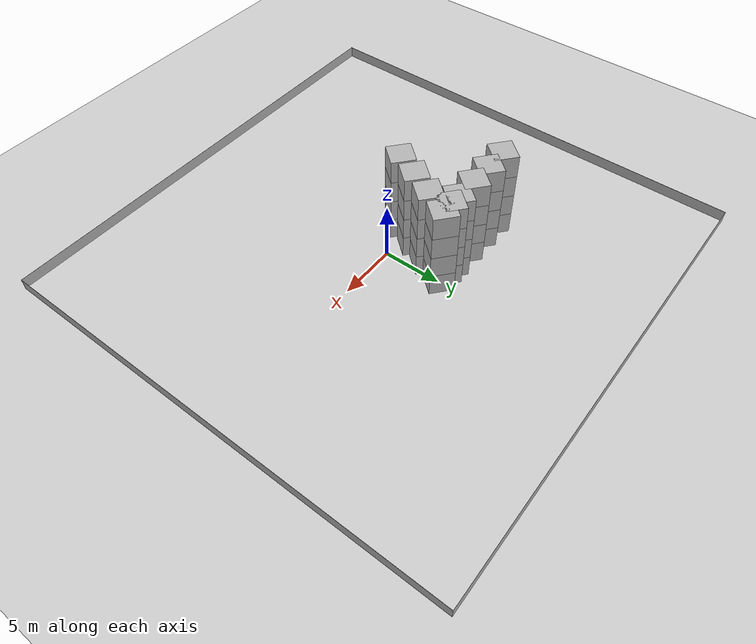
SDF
<sdf version="1.9">
 <world name="swarm_deadlock_glas">
  <model name="ground_plane">
   <static>true</static>
   <link name="link">
    <collision name="collision">
     <geometry><plane><normal>0 0 1</normal><size>1 1</size></plane></geometry>
    </collision>
    <visual name="visual">
     <geometry><plane><normal>0 0 1</normal><size>100 100</size></plane></geometry>
     <material>
      <ambient>0.8 0.8 0.8 1</ambient>
      <diffuse>0.8 0.8 0.8 1</diffuse>
      <specular>0.8 0.8 0.8 1</specular>
     </material>
    </visual>
    <inertial>
     <mass>1</mass>
     <inertia><ixx>1</ixx><ixy>0</ixy><ixz>0</ixz><iyy>1</iyy><iyz>0</iyz><izz>1</izz></inertia>
    </inertial>
   </link>
  </model>
  <model name="wall_1">
   <pose>-20 0 .5 0 0 -1.57</pose>
   <static>true</static>
   <link name="link">
    <collision name="collision"><geometry><box><size>40 .01 1</size></box></geometry></collision>
    <visual name="visual">
     <geometry><box><size>40 .01 1</size></box></geometry>
     <material>
      <ambient>0.7 0.7 0.7 1</ambient>
      <diffuse>0.7 0.7 0.7 1</diffuse>
      <specular>0.7 0.7 0.7 1</specular>
     </material>
    </visual>
    <inertial>
     <mass>1</mass>
     <inertia><ixx>1</ixx><ixy>0</ixy><ixz>0</ixz><iyy>1</iyy><iyz>0</iyz><izz>1</izz></inertia>
    </inertial>
   </link>
  </model>
  <model name="wall_2">
   <pose>20 0 .5 0 0 -1.57</pose>
   <static>true</static>
   <link name="link">
    <collision name="collision"><geometry><box><size>40 .01 1</size></box></geometry></collision>
    <visual name="visual">
     <geometry><box><size>40 .01 1</size></box></geometry>
     <material>
      <ambient>0.7 0.7 0.7 1</ambient>
      <diffuse>0.7 0.7 0.7 1</diffuse>
      <specular>0.7 0.7 0.7 1</specular>
     </material>
    </visual>
    <inertial>
     <mass>1</mass>
     <inertia><ixx>1</ixx><ixy>0</ixy><ixz>0</ixz><iyy>1</iyy><iyz>0</iyz><izz>1</izz></inertia>
    </inertial>
   </link>
  </model>
  <model name="wall_3">
   <pose>0 20 .5 0 0 0</pose>
   <static>true</static>
   <link name="link">
    <collision name="collision"><geometry><box><size>40 .01 1</size></box></geometry></collision>
    <visual name="visual">
     <geometry><box><size>40 .01 1</size></box></geometry>
     <material>
      <ambient>0.7 0.7 0.7 1</ambient>
      <diffuse>0.7 0.7 0.7 1</diffuse>
      <specular>0.7 0.7 0.7 1</specular>
     </material>
    </visual>
    <inertial>
     <mass>1</mass>
     <inertia><ixx>1</ixx><ixy>0</ixy><ixz>0</ixz><iyy>1</iyy><iyz>0</iyz><izz>1</izz></inertia>
    </inertial>
   </link>
  </model>
  <model name="wall_4">
   <pose>0 -20 .5 0 0 0</pose>
   <static>true</static>
   <link name="link">
    <collision name="collision"><geometry><box><size>40 .01 1</size></box></geometry></collision>
    <visual name="visual">
     <geometry><box><size>40 .01 1</size></box></geometry>
     <material>
      <ambient>0.7 0.7 0.7 1</ambient>
      <diffuse>0.7 0.7 0.7 1</diffuse>
      <specular>0.7 0.7 0.7 1</specular>
     </material>
    </visual>
    <inertial>
     <mass>1</mass>
     <inertia><ixx>1</ixx><ixy>0</ixy><ixz>0</ixz><iyy>1</iyy><iyz>0</iyz><izz>1</izz></inertia>
    </inertial>
   </link>
  </model>
  <model name="obstacle_left_1">
   <static>true</static>
   <pose>-3 -1 1 0 0 -0.7</pose>
   <link name="link">
    <collision name="collision"><geometry><box><size>2 2 2</size></box></geometry></collision>
    <visual name="visual">
     <geometry><box><size>2 2 2</size></box></geometry>
     <material>
      <ambient>0.7 0.7 0.7 1</ambient>
      <diffuse>0.7 0.7 0.7 1</diffuse>
      <specular>0.7 0.7 0.7 1</specular>
     </material>
    </visual>
   </link>
  </model>
  <model name="obstacle_left_11">
   <static>true</static>
   <pose>-3 -1 3 0 0 -0.7</pose>
   <link name="link">
    <collision name="collision"><geometry><box><size>2 2 2</size></box></geometry></collision>
    <visual name="visual">
     <geometry><box><size>2 2 2</size></box></geometry>
     <material>
      <ambient>0.7 0.7 0.7 1</ambient>
      <diffuse>0.7 0.7 0.7 1</diffuse>
      <specular>0.7 0.7 0.7 1</specular>
     </material>
    </visual>
   </link>
  </model>
  <model name="obstacle_left_12">
   <static>true</static>
   <pose>-3 -1 5 0 0 -0.7</pose>
   <link name="link">
    <collision name="collision"><geometry><box><size>2 2 2</size></box></geometry></collision>
    <visual name="visual">
     <geometry><box><size>2 2 2</size></box></geometry>
     <material>
      <ambient>0.7 0.7 0.7 1</ambient>
      <diffuse>0.7 0.7 0.7 1</diffuse>
      <specular>0.7 0.7 0.7 1</specular>
     </material>
    </visual>
   </link>
  </model>
  <model name="obstacle_left_13">
   <static>true</static>
   <pose>-3 -1 7 0 0 -0.7</pose>
   <link name="link">
    <collision name="collision"><geometry><box><size>2 2 2</size></box></geometry></collision>
    <visual name="visual">
     <geometry><box><size>2 2 2</size></box></geometry>
     <material>
      <ambient>0.7 0.7 0.7 1</ambient>
      <diffuse>0.7 0.7 0.7 1</diffuse>
      <specular>0.7 0.7 0.7 1</specular>
     </material>
    </visual>
   </link>
  </model>
  <model name="obstacle_left_2">
   <static>true</static>
   <pose>-2 1 1 0 0 -0.7</pose>
   <link name="link">
    <collision name="collision"><geometry><box><size>2 2 2</size></box></geometry></collision>
    <visual name="visual">
     <geometry><box><size>2 2 2</size></box></geometry>
     <material>
      <ambient>0.7 0.7 0.7 1</ambient>
      <diffuse>0.7 0.7 0.7 1</diffuse>
      <specular>0.7 0.7 0.7 1</specular>
     </material>
    </visual>
   </link>
  </model>
  <model name="obstacle_left_21">
   <static>true</static>
   <pose>-2 1 3 0 0 -0.7</pose>
   <link name="link">
    <collision name="collision"><geometry><box><size>2 2 2</size></box></geometry></collision>
    <visual name="visual">
     <geometry><box><size>2 2 2</size></box></geometry>
     <material>
      <ambient>0.7 0.7 0.7 1</ambient>
      <diffuse>0.7 0.7 0.7 1</diffuse>
      <specular>0.7 0.7 0.7 1</specular>
     </material>
    </visual>
   </link>
  </model>
  <model name="obstacle_left_22">
   <static>true</static>
   <pose>-2 1 5 0 0 -0.7</pose>
   <link name="link">
    <collision name="collision"><geometry><box><size>2 2 2</size></box></geometry></collision>
    <visual name="visual">
     <geometry><box><size>2 2 2</size></box></geometry>
     <material>
      <ambient>0.7 0.7 0.7 1</ambient>
      <diffuse>0.7 0.7 0.7 1</diffuse>
      <specular>0.7 0.7 0.7 1</specular>
     </material>
    </visual>
   </link>
  </model>
  <model name="obstacle_left_23">
   <static>true</static>
   <pose>-2 1 7 0 0 -0.7</pose>
   <link name="link">
    <collision name="collision"><geometry><box><size>2 2 2</size></box></geometry></collision>
    <visual name="visual">
     <geometry><box><size>2 2 2</size></box></geometry>
     <material>
      <ambient>0.7 0.7 0.7 1</ambient>
      <diffuse>0.7 0.7 0.7 1</diffuse>
      <specular>0.7 0.7 0.7 1</specular>
     </material>
    </visual>
   </link>
  </model>
  <model name="obstacle_left_3">
   <static>true</static>
   <pose>-1 3 1 0 0 -0.7</pose>
   <link name="link">
    <collision name="collision"><geometry><box><size>2 2 2</size></box></geometry></collision>
    <visual name="visual">
     <geometry><box><size>2 2 2</size></box></geometry>
     <material>
      <ambient>0.7 0.7 0.7 1</ambient>
      <diffuse>0.7 0.7 0.7 1</diffuse>
      <specular>0.7 0.7 0.7 1</specular>
     </material>
    </visual>
   </link>
  </model>
  <model name="obstacle_left_31">
   <static>true</static>
   <pose>-1 3 3 0 0 -0.7</pose>
   <link name="link">
    <collision name="collision"><geometry><box><size>2 2 2</size></box></geometry></collision>
    <visual name="visual">
     <geometry><box><size>2 2 2</size></box></geometry>
     <material>
      <ambient>0.7 0.7 0.7 1</ambient>
      <diffuse>0.7 0.7 0.7 1</diffuse>
      <specular>0.7 0.7 0.7 1</specular>
     </material>
    </visual>
   </link>
  </model>
  <model name="obstacle_left_32">
   <static>true</static>
   <pose>-1 3 5 0 0 -0.7</pose>
   <link name="link">
    <collision name="collision"><geometry><box><size>2 2 2</size></box></geometry></collision>
    <visual name="visual">
     <geometry><box><size>2 2 2</size></box></geometry>
     <material>
      <ambient>0.7 0.7 0.7 1</ambient>
      <diffuse>0.7 0.7 0.7 1</diffuse>
      <specular>0.7 0.7 0.7 1</specular>
     </material>
    </visual>
   </link>
  </model>
  <model name="obstacle_left_33">
   <static>true</static>
   <pose>-1 3 7 0 0 -0.7</pose>
   <link name="link">
    <collision name="collision"><geometry><box><size>2 2 2</size></box></geometry></collision>
    <visual name="visual">
     <geometry><box><size>2 2 2</size></box></geometry>
     <material>
      <ambient>0.7 0.7 0.7 1</ambient>
      <diffuse>0.7 0.7 0.7 1</diffuse>
      <specular>0.7 0.7 0.7 1</specular>
     </material>
    </visual>
   </link>
  </model>
  <model name="obstacle_left_4">
   <static>true</static>
   <pose>0 5 1 0 0 -0.7</pose>
   <link name="link">
    <collision name="collision"><geometry><box><size>2 2 2</size></box></geometry></collision>
    <visual name="visual">
     <geometry><box><size>2 2 2</size></box></geometry>
     <material>
      <ambient>0.7 0.7 0.7 1</ambient>
      <diffuse>0.7 0.7 0.7 1</diffuse>
      <specular>0.7 0.7 0.7 1</specular>
     </material>
    </visual>
   </link>
  </model>
  <model name="obstacle_left_41">
   <static>true</static>
   <pose>0 5 3 0 0 -0.7</pose>
   <link name="link">
    <collision name="collision"><geometry><box><size>2 2 2</size></box></geometry></collision>
    <visual name="visual">
     <geometry><box><size>2 2 2</size></box></geometry>
     <material>
      <ambient>0.7 0.7 0.7 1</ambient>
      <diffuse>0.7 0.7 0.7 1</diffuse>
      <specular>0.7 0.7 0.7 1</specular>
     </material>
    </visual>
   </link>
  </model>
  <model name="obstacle_left_42">
   <static>true</static>
   <pose>0 5 5 0 0 -0.7</pose>
   <link name="link">
    <collision name="collision"><geometry><box><size>2 2 2</size></box></geometry></collision>
    <visual name="visual">
     <geometry><box><size>2 2 2</size></box></geometry>
     <material>
      <ambient>0.7 0.7 0.7 1</ambient>
      <diffuse>0.7 0.7 0.7 1</diffuse>
      <specular>0.7 0.7 0.7 1</specular>
     </material>
    </visual>
   </link>
  </model>
  <model name="obstacle_left_43">
   <static>true</static>
   <pose>0 5 7 0 0 -0.7</pose>
   <link name="link">
    <collision name="collision"><geometry><box><size>2 2 2</size></box></geometry></collision>
    <visual name="visual">
     <geometry><box><size>2 2 2</size></box></geometry>
     <material>
      <ambient>0.7 0.7 0.7 1</ambient>
      <diffuse>0.7 0.7 0.7 1</diffuse>
      <specular>0.7 0.7 0.7 1</specular>
     </material>
    </visual>
   </link>
  </model>
  <model name="obstacle_left_50">
   <static>true</static>
   <pose>-1 5 1 0 0 -0.7</pose>
   <link name="link">
    <collision name="collision"><geometry><box><size>2 2 2</size></box></geometry></collision>
    <visual name="visual">
     <geometry><box><size>2 2 2</size></box></geometry>
     <material>
      <ambient>0.7 0.7 0.7 1</ambient>
      <diffuse>0.7 0.7 0.7 1</diffuse>
      <specular>0.7 0.7 0.7 1</specular>
     </material>
    </visual>
   </link>
  </model>
  <model name="obstacle_left_51">
   <static>true</static>
   <pose>-1 5 3 0 0 -0.7</pose>
   <link name="link">
    <collision name="collision"><geometry><box><size>2 2 2</size></box></geometry></collision>
    <visual name="visual">
     <geometry><box><size>2 2 2</size></box></geometry>
     <material>
      <ambient>0.7 0.7 0.7 1</ambient>
      <diffuse>0.7 0.7 0.7 1</diffuse>
      <specular>0.7 0.7 0.7 1</specular>
     </material>
    </visual>
   </link>
  </model>
  <model name="obstacle_left_52">
   <static>true</static>
   <pose>-1 5 5 0 0 -0.7</pose>
   <link name="link">
    <collision name="collision"><geometry><box><size>2 2 2</size></box></geometry></collision>
    <visual name="visual">
     <geometry><box><size>2 2 2</size></box></geometry>
     <material>
      <ambient>0.7 0.7 0.7 1</ambient>
      <diffuse>0.7 0.7 0.7 1</diffuse>
      <specular>0.7 0.7 0.7 1</specular>
     </material>
    </visual>
   </link>
  </model>
  <model name="obstacle_left_53">
   <static>true</static>
   <pose>-1 5 7 0 0 -0.7</pose>
   <link name="link">
    <collision name="collision"><geometry><box><size>2 2 2</size></box></geometry></collision>
    <visual name="visual">
     <geometry><box><size>2 2 2</size></box></geometry>
     <material>
      <ambient>0.7 0.7 0.7 1</ambient>
      <diffuse>0.7 0.7 0.7 1</diffuse>
      <specular>0.7 0.7 0.7 1</specular>
     </material>
    </visual>
   </link>
  </model>
  <model name="obstacle_left_60">
   <static>true</static>
   <pose>-2 5 1 0 0 -0.7</pose>
   <link name="link">
    <collision name="collision"><geometry><box><size>2 2 2</size></box></geometry></collision>
    <visual name="visual">
     <geometry><box><size>2 2 2</size></box></geometry>
     <material>
      <ambient>0.7 0.7 0.7 1</ambient>
      <diffuse>0.7 0.7 0.7 1</diffuse>
      <specular>0.7 0.7 0.7 1</specular>
     </material>
    </visual>
   </link>
  </model>
  <model name="obstacle_left_61">
   <static>true</static>
   <pose>-2 5 3 0 0 -0.7</pose>
   <link name="link">
    <collision name="collision"><geometry><box><size>2 2 2</size></box></geometry></collision>
    <visual name="visual">
     <geometry><box><size>2 2 2</size></box></geometry>
     <material>
      <ambient>0.7 0.7 0.7 1</ambient>
      <diffuse>0.7 0.7 0.7 1</diffuse>
      <specular>0.7 0.7 0.7 1</specular>
     </material>
    </visual>
   </link>
  </model>
  <model name="obstacle_left_62">
   <static>true</static>
   <pose>-2 5 5 0 0 -0.7</pose>
   <link name="link">
    <collision name="collision"><geometry><box><size>2 2 2</size></box></geometry></collision>
    <visual name="visual">
     <geometry><box><size>2 2 2</size></box></geometry>
     <material>
      <ambient>0.7 0.7 0.7 1</ambient>
      <diffuse>0.7 0.7 0.7 1</diffuse>
      <specular>0.7 0.7 0.7 1</specular>
     </material>
    </visual>
   </link>
  </model>
  <model name="obstacle_left_63">
   <static>true</static>
   <pose>-2 5 7 0 0 -0.7</pose>
   <link name="link">
    <collision name="collision"><geometry><box><size>2 2 2</size></box></geometry></collision>
    <visual name="visual">
     <geometry><box><size>2 2 2</size></box></geometry>
     <material>
      <ambient>0.7 0.7 0.7 1</ambient>
      <diffuse>0.7 0.7 0.7 1</diffuse>
      <specular>0.7 0.7 0.7 1</specular>
     </material>
    </visual>
   </link>
  </model>
  <model name="obstacle_left_70">
   <static>true</static>
   <pose>-4 5 1 0 0 -0.7</pose>
   <link name="link">
    <collision name="collision"><geometry><box><size>2 2 2</size></box></geometry></collision>
    <visual name="visual">
     <geometry><box><size>2 2 2</size></box></geometry>
     <material>
      <ambient>0.7 0.7 0.7 1</ambient>
      <diffuse>0.7 0.7 0.7 1</diffuse>
      <specular>0.7 0.7 0.7 1</specular>
     </material>
    </visual>
   </link>
  </model>
  <model name="obstacle_left_71">
   <static>true</static>
   <pose>-4 5 3 0 0 -0.7</pose>
   <link name="link">
    <collision name="collision"><geometry><box><size>2 2 2</size></box></geometry></collision>
    <visual name="visual">
     <geometry><box><size>2 2 2</size></box></geometry>
     <material>
      <ambient>0.7 0.7 0.7 1</ambient>
      <diffuse>0.7 0.7 0.7 1</diffuse>
      <specular>0.7 0.7 0.7 1</specular>
     </material>
    </visual>
   </link>
  </model>
  <model name="obstacle_left_72">
   <static>true</static>
   <pose>-4 5 5 0 0 -0.7</pose>
   <link name="link">
    <collision name="collision"><geometry><box><size>2 2 2</size></box></geometry></collision>
    <visual name="visual">
     <geometry><box><size>2 2 2</size></box></geometry>
     <material>
      <ambient>0.7 0.7 0.7 1</ambient>
      <diffuse>0.7 0.7 0.7 1</diffuse>
      <specular>0.7 0.7 0.7 1</specular>
     </material>
    </visual>
   </link>
  </model>
  <model name="obstacle_left_73">
   <static>true</static>
   <pose>-4 5 7 0 0 -0.7</pose>
   <link name="link">
    <collision name="collision"><geometry><box><size>2 2 2</size></box></geometry></collision>
    <visual name="visual">
     <geometry><box><size>2 2 2</size></box></geometry>
     <material>
      <ambient>0.7 0.7 0.7 1</ambient>
      <diffuse>0.7 0.7 0.7 1</diffuse>
      <specular>0.7 0.7 0.7 1</specular>
     </material>
    </visual>
   </link>
  </model>
  <model name="obstacle_left_80">
   <static>true</static>
   <pose>-6 5 1 0 0 -0.7</pose>
   <link name="link">
    <collision name="collision"><geometry><box><size>2 2 2</size></box></geometry></collision>
    <visual name="visual">
     <geometry><box><size>2 2 2</size></box></geometry>
     <material>
      <ambient>0.7 0.7 0.7 1</ambient>
      <diffuse>0.7 0.7 0.7 1</diffuse>
      <specular>0.7 0.7 0.7 1</specular>
     </material>
    </visual>
   </link>
  </model>
  <model name="obstacle_left_81">
   <static>true</static>
   <pose>-6 5 3 0 0 -0.7</pose>
   <link name="link">
    <collision name="collision"><geometry><box><size>2 2 2</size></box></geometry></collision>
    <visual name="visual">
     <geometry><box><size>2 2 2</size></box></geometry>
     <material>
      <ambient>0.7 0.7 0.7 1</ambient>
      <diffuse>0.7 0.7 0.7 1</diffuse>
      <specular>0.7 0.7 0.7 1</specular>
     </material>
    </visual>
   </link>
  </model>
  <model name="obstacle_left_82">
   <static>true</static>
   <pose>-6 5 5 0 0 -0.7</pose>
   <link name="link">
    <collision name="collision"><geometry><box><size>2 2 2</size></box></geometry></collision>
    <visual name="visual">
     <geometry><box><size>2 2 2</size></box></geometry>
     <material>
      <ambient>0.7 0.7 0.7 1</ambient>
      <diffuse>0.7 0.7 0.7 1</diffuse>
      <specular>0.7 0.7 0.7 1</specular>
     </material>
    </visual>
   </link>
  </model>
  <model name="obstacle_left_83">
   <static>true</static>
   <pose>-6 5 7 0 0 -0.7</pose>
   <link name="link">
    <collision name="collision"><geometry><box><size>2 2 2</size></box></geometry></collision>
    <visual name="visual">
     <geometry><box><size>2 2 2</size></box></geometry>
     <material>
      <ambient>0.7 0.7 0.7 1</ambient>
      <diffuse>0.7 0.7 0.7 1</diffuse>
      <specular>0.7 0.7 0.7 1</specular>
     </material>
    </visual>
   </link>
  </model>
  <model name="obstacle_left_90">
   <static>true</static>
   <pose>-8 5 1 0 0 -0.7</pose>
   <link name="link">
    <collision name="collision"><geometry><box><size>2 2 2</size></box></geometry></collision>
    <visual name="visual">
     <geometry><box><size>2 2 2</size></box></geometry>
     <material>
      <ambient>0.7 0.7 0.7 1</ambient>
      <diffuse>0.7 0.7 0.7 1</diffuse>
      <specular>0.7 0.7 0.7 1</specular>
     </material>
    </visual>
   </link>
  </model>
  <model name="obstacle_left_91">
   <static>true</static>
   <pose>-8 5 3 0 0 -0.7</pose>
   <link name="link">
    <collision name="collision"><geometry><box><size>2 2 2</size></box></geometry></collision>
    <visual name="visual">
     <geometry><box><size>2 2 2</size></box></geometry>
     <material>
      <ambient>0.7 0.7 0.7 1</ambient>
      <diffuse>0.7 0.7 0.7 1</diffuse>
      <specular>0.7 0.7 0.7 1</specular>
     </material>
    </visual>
   </link>
  </model>
  <model name="obstacle_left_92">
   <static>true</static>
   <pose>-8 5 5 0 0 -0.7</pose>
   <link name="link">
    <collision name="collision"><geometry><box><size>2 2 2</size></box></geometry></collision>
    <visual name="visual">
     <geometry><box><size>2 2 2</size></box></geometry>
     <material>
      <ambient>0.7 0.7 0.7 1</ambient>
      <diffuse>0.7 0.7 0.7 1</diffuse>
      <specular>0.7 0.7 0.7 1</specular>
     </material>
    </visual>
   </link>
  </model>
  <model name="obstacle_left_93">
   <static>true</static>
   <pose>-8 5 7 0 0 -0.7</pose>
   <link name="link">
    <collision name="collision"><geometry><box><size>2 2 2</size></box></geometry></collision>
    <visual name="visual">
     <geometry><box><size>2 2 2</size></box></geometry>
     <material>
      <ambient>0.7 0.7 0.7 1</ambient>
      <diffuse>0.7 0.7 0.7 1</diffuse>
      <specular>0.7 0.7 0.7 1</specular>
     </material>
    </visual>
   </link>
  </model>
 </world>
</sdf>
